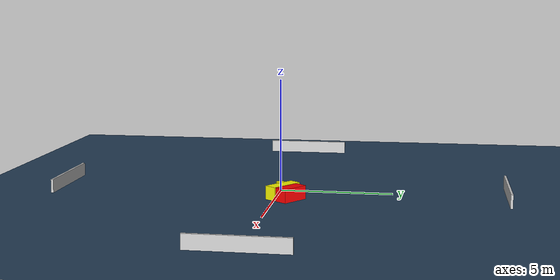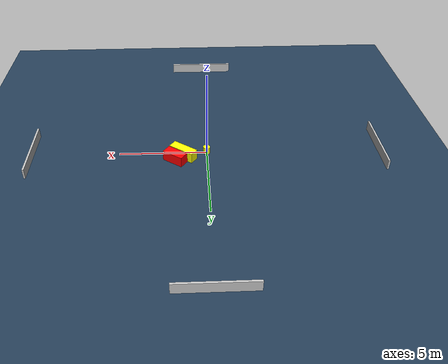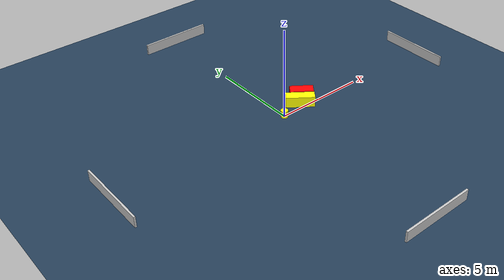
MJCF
<?xml version="1.0" ?>
<mujoco model="generated_environment">
  <option timestep="0.01" integrator="RK4" cone="elliptic"/>
  <default>
    <geom density="1"/>
  </default>
  <asset>
    <texture builtin="gradient" height="3072" name="skybox" rgb1="0.3 0.5 0.7" rgb2="0 0 0" type="skybox" width="512"/>
    <texture builtin="checker" height="300" name="groundplane" rgb1="0.2 0.3 0.4" rgb2="0.1 0.2 0.3" type="2d" width="300"/>
    <material name="groundplane" reflectance="0.2" texrepeat="5 5" texture="groundplane"/>
  </asset>
  <worldbody>
    <light dir="0 0 -1" directional="true" pos="0 0 1.5"/>
    <geom condim="3" friction="0.5 0.005 0.001" material="groundplane" name="floor" pos="0 0 0" size="0 0 0.05" type="plane"/>
    <body name="walls">
      <geom name="wall_1" condim="4" pos="-10.0 0.0 0.3" rgba="0.800000011920929 0.800000011920929 0.800000011920929 1.0" size="0.05 2.0 0.3" type="box"/>
      <geom name="wall_2" condim="4" pos="10.0 0.0 0.3" rgba="0.800000011920929 0.800000011920929 0.800000011920929 1.0" size="0.05 2.0 0.3" type="box"/>
      <geom name="wall_3" condim="4" pos="0.0 -10.0 0.3" rgba="0.800000011920929 0.800000011920929 0.800000011920929 1.0" size="2.0 0.05 0.3" type="box"/>
      <geom name="wall_4" condim="4" pos="0.0 10.0 0.3" rgba="0.800000011920929 0.800000011920929 0.800000011920929 1.0" size="2.0 0.05 0.3" type="box"/>
    </body>
    <body name="robot">
      <joint name="joint_x" type="slide" pos="0 0 0" axis="1 0 0"/>
      <joint name="joint_y" type="slide" pos="0 0 0" axis="0 1 0"/>
      <geom name="robot" type="cylinder" pos="0.0 0.0 0.2" size="0.2 0.2 0.0" mass="5.0" friction="1.0 0.005 0.0001" condim="4" rgba="1.0 1.0 0.0 1.0"/>
    </body>
    <body name="obstacle_1_movable">
      <geom name="obstacle_1_movable" condim="4" pos="1.3495894028844237 0.30672536586422644 0.3" euler="0 0 53.19382278345432" friction="0.0 0.005 0.001" rgba="1.0 1.0 0.0 1.0" size="0.2704372480588631 0.774305080653402 0.3" type="box" mass="0.1"/>
      <joint type="free"/>
    </body>
    <body name="obstacle_2_static">
      <geom name="obstacle_2_static" condim="4" pos="1.8134343622279652 0.717983014960303 0.3" euler="0 0 323.96143159364794" friction="0.0 0.005 0.001" rgba="1.0 0.0 0.0 1.0" size="0.6325200962738547 0.291904610659863 0.3" type="box"/>
    </body>
  </worldbody>
  <actuator>
    <motor name="actuator_x" joint="joint_x" gear="1" ctrlrange="-1 1"/>
    <motor name="actuator_y" joint="joint_y" gear="1" ctrlrange="-1 1"/>
  </actuator>
</mujoco>
